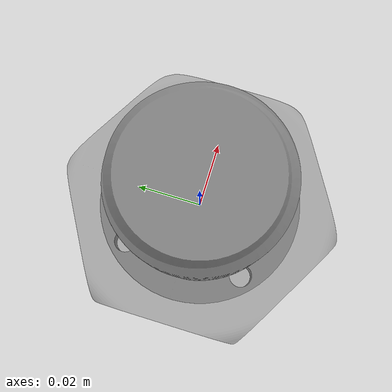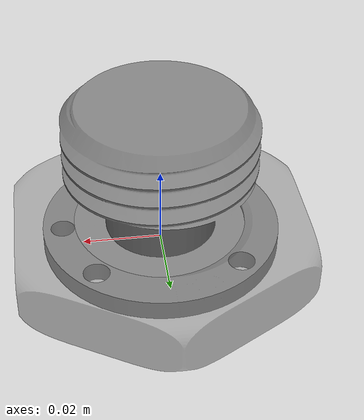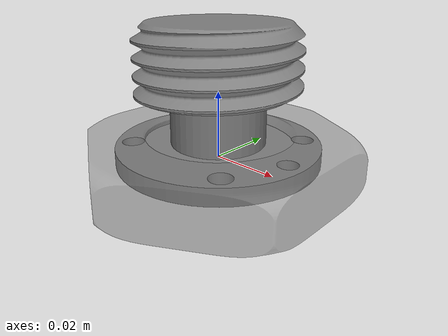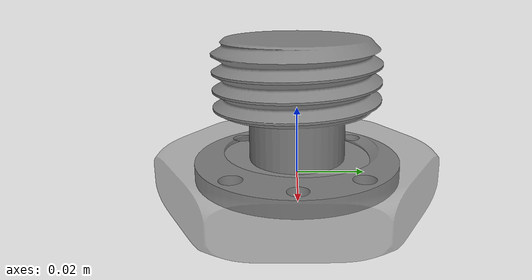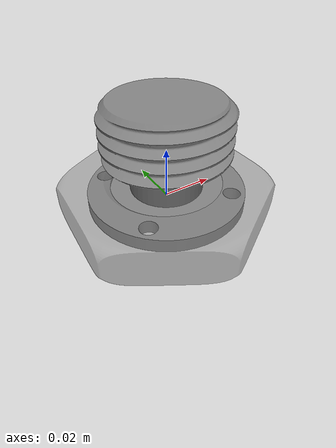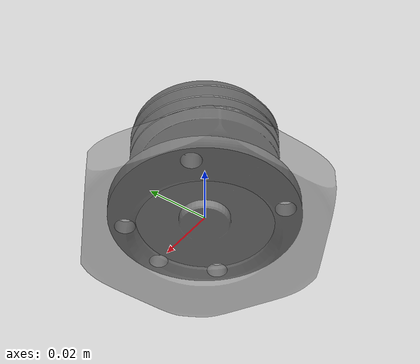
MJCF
<mujoco model="bolt_nut">

    <compiler inertiafromgeom="true" angle="radian" coordinate="local" />
    <option timestep="0.001" gravity="0 0 0" iterations="1" integrator="Euler" />
    <default>
        <joint limited="false" damping="1" />
        <geom contype="2" conaffinity="1" condim="1" friction="100.0 .1 .1" density="1000" margin="0.002" />
    </default>
    <asset>
        <mesh name="nut" file="mesh/nut.STL" />
        <mesh name="bolt" file="mesh/bolt.STL" />
        <mesh name="cone" file="mesh/cone.STL" scale = "0.003 0.003 0.003" />
    </asset>

    <worldbody>
    <body name="nut" pos="0 0 0">
            <geom name="nut_geom" type="mesh" mesh="nut" contype="2" rgba="0.5 0.5 0.5 0.5" />
            <joint name="ball_x" type="slide" pos="0 0 0" axis="1 0 0" />
            <joint name="ball_y" type="slide" pos="0 0 0" axis="0 1 0" />
            <joint name="ball_z" type="slide" pos="0 0 0" axis="0 0 1" />
            <joint name="ball_ex" type="hinge" pos="0 0 0" axis="1 0 0" />
            <joint name="ball_ey" type="hinge" pos="0 0 0" axis="0 1 0" />
            <joint name="ball_ez" type="hinge" pos="0 0 0" axis="0 0 1" />
        </body>
    <body name="bolt" pos="0 0 0">
            <geom name="bolt_geom" type="mesh" mesh="bolt" rgba="0.5 0.5 0.5 1"/>
            <camera name="camera5" mode="track" pos="0.10 0 0.075" xyaxes="0 1 0 -0.4 0 1"/>
            <!-- rgba=".55 .227 .38 1" -->
        </body>

    <body name="bolt_origin" pos="0 0 0">
            <geom name="bolt_origin_geom" type="mesh" mesh="bolt" rgba="0.5 0.5 0.5 0.3"/>
        </body>

    <body name="arrow1_start" pos="0 0 0">
            <site name="s1" pos="0 0 0" rgba=".9 .9 .9 0" size ="0.0001" />
        </body>

    <body name="arrow1_end" pos="0 0 0">
            <geom name="cone_geon" type="mesh" mesh="cone" rgba=".95 .3 .384 1" />
            <site name="s2" pos="0 0 0" rgba=".9 .9 .9 0" size ="0.0001" />
        </body>

    <body name="arrow2_start" pos="0 0 0">
            <site name="s3" pos="0 0 0" rgba=".9 .9 .9 0" size ="0.0001" />
        </body>

    <body name="arrow2_end" pos="0 0 0">
            <geom name="cone_geom_arrow2" type="mesh" mesh="cone" rgba="0 .313 .478 1" />
            <site name="s4" pos="0 0 0" rgba=".9 .9 .9 0" size ="0.0001" />
        </body>

    </worldbody>

    <tendon>
        <spatial width="0.001" rgba=".95 .3 .384 1">
            <site site="s1"/>
            <site site="s2"/>
        </spatial>
        <spatial width="0.001" rgba="0 .313 .478 1">
            <site site="s3"/>
            <site site="s4"/>
        </spatial>
    </tendon>

    <actuator>
        <motor joint="ball_x" />
        <motor joint="ball_y" />
        <motor joint="ball_z" />
        <motor joint="ball_ex" />
        <motor joint="ball_ey" />
        <motor joint="ball_ez" />
    </actuator>

</mujoco>
